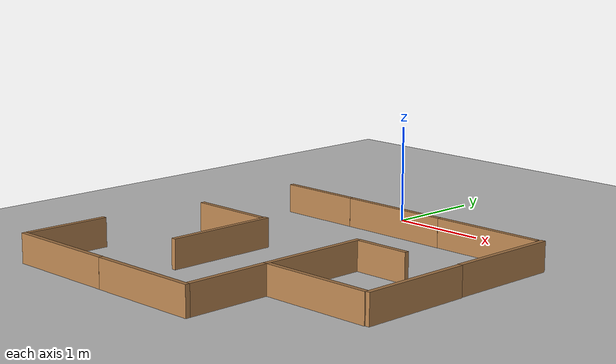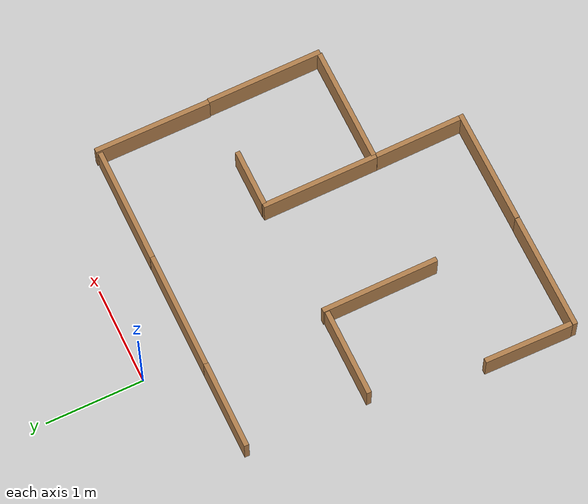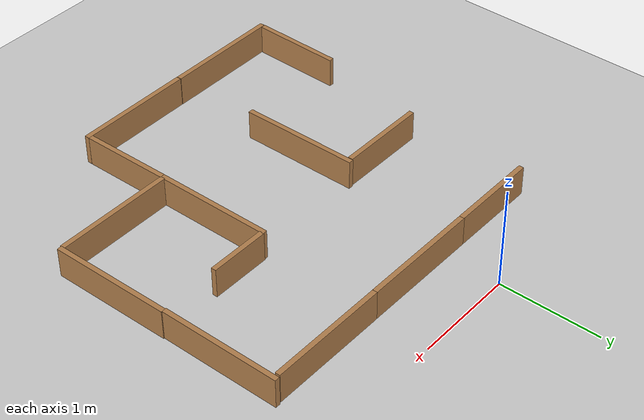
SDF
<sdf version="1.7">
 <world name="default">
  <light name="sun" type="directional">
   <pose>0 0 10 0 -0 0</pose>
   <diffuse>0.8 0.8 0.8 1</diffuse>
   <specular>0.2 0.2 0.2 1</specular>
   <attenuation>
    <range>1000</range>
    <constant>0.9</constant>
    <linear>0.01</linear>
    <quadratic>0.001</quadratic>
   </attenuation>
   <direction>-0.5 0.1 -0.9</direction>
   <spot><inner_angle>0</inner_angle><outer_angle>0</outer_angle><falloff>0</falloff></spot>
  </light>
  <model name="ground_plane">
   <static>1</static>
   <link name="link">
    <collision name="collision">
     <geometry><plane><normal>0 0 1</normal><size>100 100</size></plane></geometry>
     <surface>
      <contact><collide_bitmask>65535</collide_bitmask></contact>
      <friction><ode><mu>100</mu><mu2>50</mu2></ode></friction>
     </surface>
    </collision>
    <visual name="visual">
     <cast_shadows>0</cast_shadows>
     <geometry><plane><normal>0 0 1</normal><size>100 100</size></plane></geometry>
     <material>
      <script><uri>file://media/materials/scripts/gazebo.material</uri><name>Gazebo/Grey</name></script>
     </material>
    </visual>
   </link>
  </model>
  <gravity>0 0 -9.8</gravity>
  <magnetic_field>6e-06 2.3e-05 -4.2e-05</magnetic_field>
  <atmosphere type="adiabatic"/>
  <physics type="ode">
   <max_step_size>0.001</max_step_size>
   <real_time_factor>1</real_time_factor>
   <real_time_update_rate>1000</real_time_update_rate>
  </physics>
  <scene><ambient>0.4 0.4 0.4 1</ambient><background>0.7 0.7 0.7 1</background><shadows>1</shadows></scene>
  <audio><device>default</device></audio>
  <spherical_coordinates>
   <surface_model>EARTH_WGS84</surface_model>
   <latitude_deg>0</latitude_deg>
   <longitude_deg>0</longitude_deg>
   <elevation>0</elevation>
   <heading_deg>0</heading_deg>
  </spherical_coordinates>
  <model name="wall120cm">
   <pose>1.02502 -2.32816 0 0 0 -1.56254</pose>
   <link name="Wall_11">
    <collision name="Wall_11_Collision">
     <geometry><box><size>1.2 0.05 0.3</size></box></geometry>
     <pose>0 0 0.15 0 -0 0</pose>
    </collision>
    <visual name="Wall_11_Visual">
     <pose>0 0 0.15 0 -0 0</pose>
     <geometry><box><size>1.2 0.05 0.3</size></box></geometry>
     <material>
      <script><uri>file://media/materials/scripts/gazebo.material</uri><name>Gazebo/Wood</name></script>
      <ambient>1 1 1 1</ambient>
     </material>
     <meta><layer>0</layer></meta>
    </visual>
   </link>
   <static>1</static>
  </model>
  <model name="wall120cm_0">
   <pose>1.64449 -2.90988 0 0 -0 0</pose>
   <link name="Wall_11">
    <collision name="Wall_11_Collision">
     <geometry><box><size>1.2 0.05 0.3</size></box></geometry>
     <pose>0 0 0.15 0 -0 0</pose>
    </collision>
    <visual name="Wall_11_Visual">
     <pose>0 0 0.15 0 -0 0</pose>
     <geometry><box><size>1.2 0.05 0.3</size></box></geometry>
     <material>
      <script><uri>file://media/materials/scripts/gazebo.material</uri><name>Gazebo/Wood</name></script>
      <ambient>1 1 1 1</ambient>
     </material>
     <meta><layer>0</layer></meta>
    </visual>
   </link>
   <static>1</static>
  </model>
  <model name="wall120cm_0_clone">
   <pose>1.59224 -0.558844 0 0 -0 0</pose>
   <link name="Wall_11">
    <collision name="Wall_11_Collision">
     <geometry><box><size>1.2 0.05 0.3</size></box></geometry>
     <pose>0 0 0.15 0 -0 0</pose>
    </collision>
    <visual name="Wall_11_Visual">
     <pose>0 0 0.15 0 -0 0</pose>
     <geometry><box><size>1.2 0.05 0.3</size></box></geometry>
     <material>
      <script><uri>file://media/materials/scripts/gazebo.material</uri><name>Gazebo/Wood</name></script>
      <ambient>1 1 1 1</ambient>
     </material>
     <meta><layer>0</layer></meta>
    </visual>
   </link>
   <static>1</static>
  </model>
  <model name="wall120cm_1">
   <pose>2.25573 -2.32347 0 0 0 -1.55827</pose>
   <link name="Wall_11">
    <collision name="Wall_11_Collision">
     <geometry><box><size>1.2 0.05 0.3</size></box></geometry>
     <pose>0 0 0.15 0 -0 0</pose>
    </collision>
    <visual name="Wall_11_Visual">
     <pose>0 0 0.15 0 -0 0</pose>
     <geometry><box><size>1.2 0.05 0.3</size></box></geometry>
     <material>
      <script><uri>file://media/materials/scripts/gazebo.material</uri><name>Gazebo/Wood</name></script>
      <ambient>1 1 1 1</ambient>
     </material>
     <meta><layer>0</layer></meta>
    </visual>
   </link>
   <static>1</static>
  </model>
  <model name="wall120cm_2">
   <pose>2.23661 -1.12389 0 0 0 -1.56533</pose>
   <link name="Wall_11">
    <collision name="Wall_11_Collision">
     <geometry><box><size>1.2 0.05 0.3</size></box></geometry>
     <pose>0 0 0.15 0 -0 0</pose>
    </collision>
    <visual name="Wall_11_Visual">
     <pose>0 0 0.15 0 -0 0</pose>
     <geometry><box><size>1.2 0.05 0.3</size></box></geometry>
     <material>
      <script><uri>file://media/materials/scripts/gazebo.material</uri><name>Gazebo/Wood</name></script>
      <ambient>1 1 1 1</ambient>
     </material>
     <meta><layer>0</layer></meta>
    </visual>
   </link>
   <static>1</static>
  </model>
  <model name="wall120cm_3">
   <pose>0.39188 -0.559959 0 0 -0 0</pose>
   <link name="Wall_11">
    <collision name="Wall_11_Collision">
     <geometry><box><size>1.2 0.05 0.3</size></box></geometry>
     <pose>0 0 0.15 0 -0 0</pose>
    </collision>
    <visual name="Wall_11_Visual">
     <pose>0 0 0.15 0 -0 0</pose>
     <geometry><box><size>1.2 0.05 0.3</size></box></geometry>
     <material>
      <script><uri>file://media/materials/scripts/gazebo.material</uri><name>Gazebo/Wood</name></script>
      <ambient>1 1 1 1</ambient>
     </material>
     <meta><layer>0</layer></meta>
    </visual>
   </link>
   <static>1</static>
  </model>
  <model name="wall120cm_clone">
   <pose>-0.187671 -2.37291 0 0 0 -1.56254</pose>
   <link name="Wall_11">
    <collision name="Wall_11_Collision">
     <geometry><box><size>1.2 0.05 0.3</size></box></geometry>
     <pose>0 0 0.15 0 -0 0</pose>
    </collision>
    <visual name="Wall_11_Visual">
     <pose>0 0 0.15 0 -0 0</pose>
     <geometry><box><size>1.2 0.05 0.3</size></box></geometry>
     <material>
      <script><uri>file://media/materials/scripts/gazebo.material</uri><name>Gazebo/Wood</name></script>
      <ambient>1 1 1 1</ambient>
     </material>
     <meta><layer>0</layer></meta>
    </visual>
   </link>
   <static>1</static>
  </model>
  <model name="wall90cm">
   <pose>-0.67318 -1.80763 0 0 -0 0</pose>
   <link name="Wall_6">
    <collision name="Wall_6_Collision">
     <geometry><box><size>0.9 0.05 0.3</size></box></geometry>
     <pose>0 0 0.15 0 -0 0</pose>
    </collision>
    <visual name="Wall_6_Visual">
     <pose>0 0 0.15 0 -0 0</pose>
     <geometry><box><size>0.9 0.05 0.3</size></box></geometry>
     <material>
      <script><uri>file://media/materials/scripts/gazebo.material</uri><name>Gazebo/Wood</name></script>
      <ambient>1 1 1 1</ambient>
     </material>
     <meta><layer>0</layer></meta>
    </visual>
   </link>
   <static>1</static>
  </model>
  <model name="wall90cm_0">
   <pose>-0.65327 -0.560367 0 0 -0 0</pose>
   <link name="Wall_6">
    <collision name="Wall_6_Collision">
     <geometry><box><size>0.9 0.05 0.3</size></box></geometry>
     <pose>0 0 0.15 0 -0 0</pose>
    </collision>
    <visual name="Wall_6_Visual">
     <pose>0 0 0.15 0 -0 0</pose>
     <geometry><box><size>0.9 0.05 0.3</size></box></geometry>
     <material>
      <script><uri>file://media/materials/scripts/gazebo.material</uri><name>Gazebo/Wood</name></script>
      <ambient>1 1 1 1</ambient>
     </material>
     <meta><layer>0</layer></meta>
    </visual>
   </link>
   <static>1</static>
  </model>
  <model name="wall60cm">
   <pose>1.33699 -1.74754 0 0 -0 0</pose>
   <link name="Wall_4">
    <collision name="Wall_4_Collision">
     <geometry><box><size>0.6 0.05 0.3</size></box></geometry>
     <pose>0 0 0.15 0 -0 0</pose>
    </collision>
    <visual name="Wall_4_Visual">
     <pose>0 0 0.15 0 -0 0</pose>
     <geometry><box><size>0.6 0.05 0.3</size></box></geometry>
     <material>
      <script><uri>file://media/materials/scripts/gazebo.material</uri><name>Gazebo/Wood</name></script>
      <ambient>1 1 1 1</ambient>
     </material>
     <meta><layer>0</layer></meta>
    </visual>
   </link>
   <static>1</static>
  </model>
  <model name="wall120cm_4">
   <pose>0.46875 -3.8521 0 0 -0 0</pose>
   <link name="Wall_11">
    <collision name="Wall_11_Collision">
     <geometry><box><size>1.2 0.05 0.3</size></box></geometry>
     <pose>0 0 0.15 0 -0 0</pose>
    </collision>
    <visual name="Wall_11_Visual">
     <pose>0 0 0.15 0 -0 0</pose>
     <geometry><box><size>1.2 0.05 0.3</size></box></geometry>
     <material>
      <script><uri>file://media/materials/scripts/gazebo.material</uri><name>Gazebo/Wood</name></script>
      <ambient>1 1 1 1</ambient>
     </material>
     <meta><layer>0</layer></meta>
    </visual>
   </link>
   <static>1</static>
  </model>
  <model name="wall90cm_1">
   <pose>1.03694 -3.37983 0 0 0 -1.556</pose>
   <link name="Wall_6">
    <collision name="Wall_6_Collision">
     <geometry><box><size>0.9 0.05 0.3</size></box></geometry>
     <pose>0 0 0.15 0 -0 0</pose>
    </collision>
    <visual name="Wall_6_Visual">
     <pose>0 0 0.15 0 -0 0</pose>
     <geometry><box><size>0.9 0.05 0.3</size></box></geometry>
     <material>
      <script><uri>file://media/materials/scripts/gazebo.material</uri><name>Gazebo/Wood</name></script>
      <ambient>1 1 1 1</ambient>
     </material>
     <meta><layer>0</layer></meta>
    </visual>
   </link>
   <static>1</static>
  </model>
  <model name="wall120cm_5">
   <pose>-0.734709 -3.85032 0 0 -0 0</pose>
   <link name="Wall_11">
    <collision name="Wall_11_Collision">
     <geometry><box><size>1.2 0.05 0.3</size></box></geometry>
     <pose>0 0 0.15 0 -0 0</pose>
    </collision>
    <visual name="Wall_11_Visual">
     <pose>0 0 0.15 0 -0 0</pose>
     <geometry><box><size>1.2 0.05 0.3</size></box></geometry>
     <material>
      <script><uri>file://media/materials/scripts/gazebo.material</uri><name>Gazebo/Wood</name></script>
      <ambient>1 1 1 1</ambient>
     </material>
     <meta><layer>0</layer></meta>
    </visual>
   </link>
   <static>1</static>
  </model>
  <model name="wall90cm_2">
   <pose>-1.30677 -3.37135 0 0 0 -1.58575</pose>
   <link name="Wall_6">
    <collision name="Wall_6_Collision">
     <geometry><box><size>0.9 0.05 0.3</size></box></geometry>
     <pose>0 0 0.15 0 -0 0</pose>
    </collision>
    <visual name="Wall_6_Visual">
     <pose>0 0 0.15 0 -0 0</pose>
     <geometry><box><size>0.9 0.05 0.3</size></box></geometry>
     <material>
      <script><uri>file://media/materials/scripts/gazebo.material</uri><name>Gazebo/Wood</name></script>
      <ambient>1 1 1 1</ambient>
     </material>
     <meta><layer>0</layer></meta>
    </visual>
   </link>
   <static>1</static>
  </model>
 </world>
</sdf>
